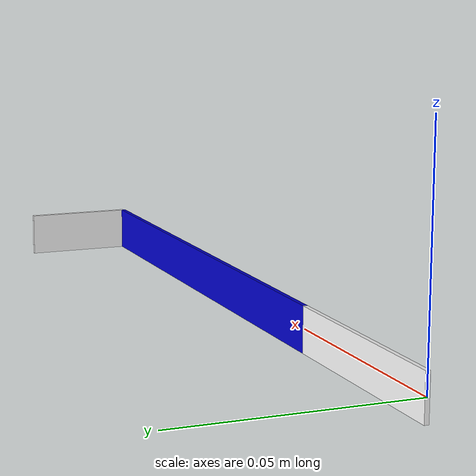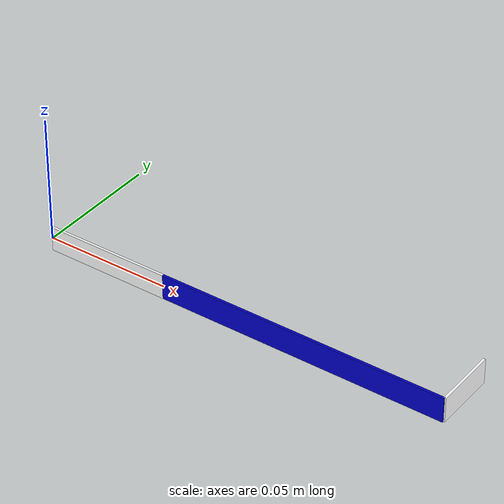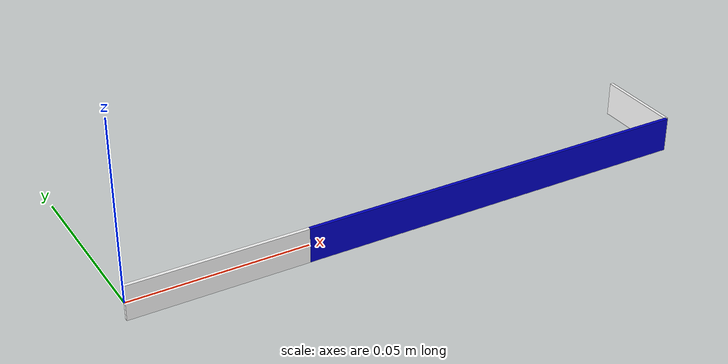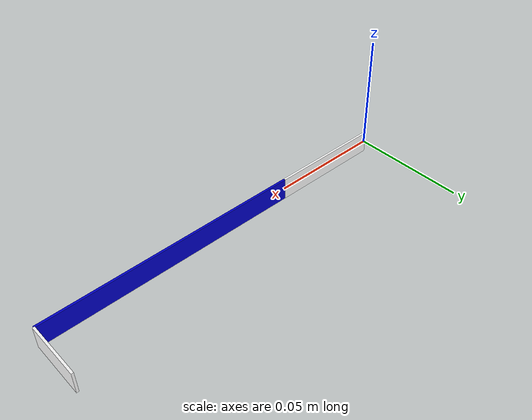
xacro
<?xml version="1.0"?>
<robot name="robotpos1" xmlns:xacro="http://ros.org/wiki/xacro">
   <material name="blue">
	  <color rgba="0 0 0.8 1"/>
   </material>

   <material name="green">
      <color rgba="0.0 0.8 0.0 1.0"/>
   </material>

   <material name="white">
	<color rgba="1 1 1 1"/>
   </material>

   <link name="link1">
   <visual>
      <geometry>
         <box size="0.05 0.001 0.01"/>
      </geometry>
      <material name="white"/>
      <origin rpy="0 0 0" xyz="0.025 0 0.0"/>
    </visual>
   </link>

   <joint name="joint_1" type="revolute">
     <axis xyz="0 0 1"/>
     <limit effort="1000.0" lower="-1.57" upper="1.57" velocity="0.5"/>
     <origin rpy="0 0 0" xyz="0.05 0 0"/>
     <parent link="link1"/>
     <child link="dummy1"/>
   </joint>

   <link name="dummy1">
   <visual>
      <geometry>
         <box size="0.115 0.001 0.01"/>
      </geometry>
      <material name="blue"/>
      <origin rpy="0 0 0" xyz="0.0575 0 0.0"/>
    </visual>
   </link>

   <joint name="fixed1" type="fixed">
     <origin rpy="0 0 1.57" xyz="0.115 0 0"/>
     <parent link="dummy1"/>
     <child link="link2"/>
   </joint>

   <link name="link2">
   <visual>
      <geometry>
         <box size="0.025 0.001 0.01"/>
      </geometry>
      <material name="white"/>
      <origin rpy="0 0 0" xyz="0.0125 0 0.0"/>
    </visual>
   </link>

</robot>
